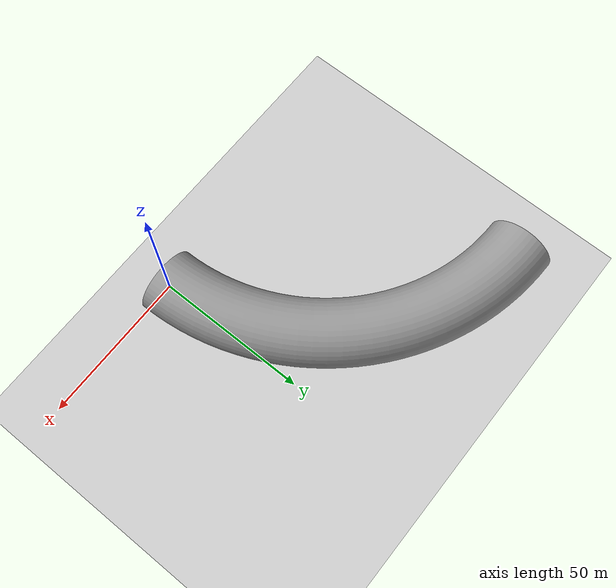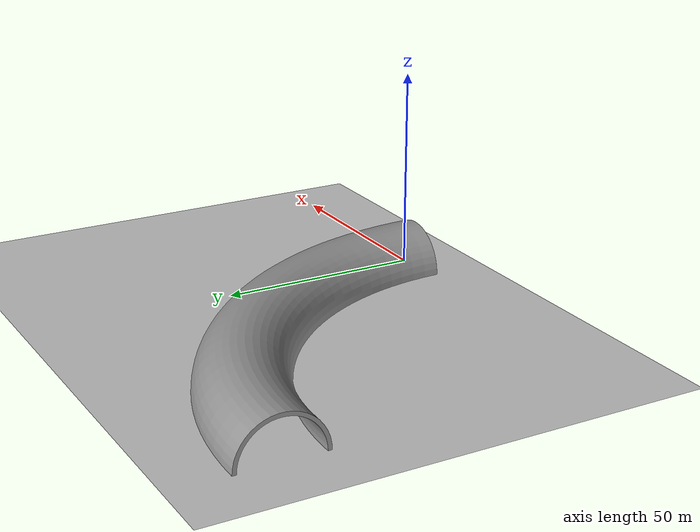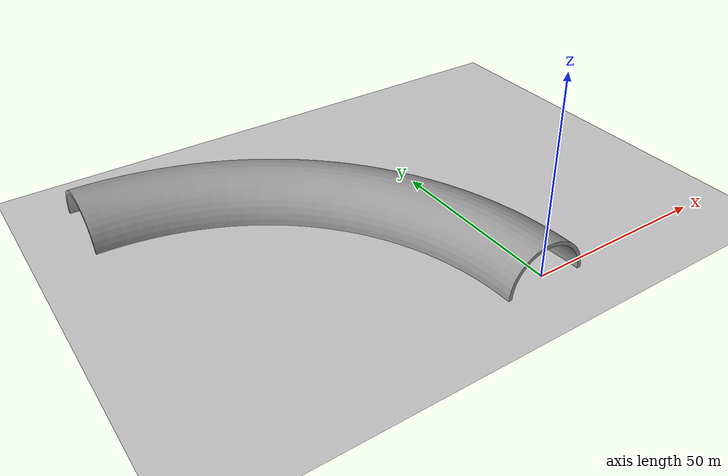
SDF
<sdf version="1.6">
 <world name="default">
  <light name="sun" type="directional">
   <pose>0 0 10 0 -0 0</pose>
   <diffuse>0.8 0.8 0.8 1</diffuse>
   <specular>0.2 0.2 0.2 1</specular>
   <attenuation>
    <range>1000</range>
    <constant>0.9</constant>
    <linear>0.01</linear>
    <quadratic>0.001</quadratic>
   </attenuation>
   <direction>-0.5 0.1 -0.9</direction>
  </light>
  <model name="ground_plane">
   <static>1</static>
   <link name="link">
    <collision name="collision">
     <geometry><plane><normal>0 0 1</normal><size>100 100</size></plane></geometry>
     <surface><friction><ode><mu>100</mu><mu2>50</mu2></ode></friction></surface>
    </collision>
    <visual name="visual">
     <cast_shadows>0</cast_shadows>
     <geometry><plane><normal>0 0 1</normal><size>100 100</size></plane></geometry>
     <material>
      <script><uri>file://media/materials/scripts/gazebo.material</uri><name>Gazebo/Grey</name></script>
     </material>
    </visual>
   </link>
  </model>
  <gravity>0 0 -9.8</gravity>
  <magnetic_field>6e-06 2.3e-05 -4.2e-05</magnetic_field>
  <atmosphere type="adiabatic"/>
  <physics name="default_physics" default="0" type="ode">
   <max_step_size>0.001</max_step_size>
   <real_time_factor>1</real_time_factor>
   <real_time_update_rate>1000</real_time_update_rate>
  </physics>
  <scene><ambient>0.4 0.4 0.4 1</ambient><background>0.7 0.7 0.7 1</background><shadows>1</shadows></scene>
  <audio><device>default</device></audio>
  <spherical_coordinates>
   <surface_model>EARTH_WGS84</surface_model>
   <latitude_deg>0</latitude_deg>
   <longitude_deg>0</longitude_deg>
   <elevation>0</elevation>
   <heading_deg>0</heading_deg>
  </spherical_coordinates>
  <model name="tilt_tunnel_0">
   <static>1</static>
   <link name="link_0">
    <inertial>
     <mass>1</mass>
     <inertia>
      <ixx>0.166667</ixx>
      <ixy>0</ixy>
      <ixz>0</ixz>
      <iyy>0.166667</iyy>
      <iyz>0</iyz>
      <izz>0.166667</izz>
     </inertia>
    </inertial>
    <pose>0 0 -0 1.5708 -0 3.1415</pose>
    <gravity>0</gravity>
    <visual name="visual">
     <geometry>
      <mesh>
       <uri>/home/thy/catkin_ws/src/my_turtlebot_launch/urdf/mesh/tilt_tunnel.stl</uri>
       <scale>1 1 1</scale>
      </mesh>
     </geometry>
     <material>
      <lighting>1</lighting>
      <script><uri>file://media/materials/scripts/gazebo.material</uri><name>Gazebo/Grey</name></script>
      <shader type="vertex"><normal_map>__default__</normal_map></shader>
      <ambient>0.3 0.3 0.3 1</ambient>
      <diffuse>0.7 0.7 0.7 1</diffuse>
      <specular>0.01 0.01 0.01 1</specular>
      <emissive>0 0 0 1</emissive>
     </material>
    </visual>
    <collision name="collision">
     <geometry>
      <mesh>
       <uri>/home/thy/catkin_ws/src/my_turtlebot_launch/urdf/mesh/tilt_tunnel.stl</uri>
       <scale>1 1 1</scale>
      </mesh>
     </geometry>
     <surface>
      <friction>
       <ode><mu>1</mu><mu2>1</mu2><fdir1>0 0 0</fdir1><slip1>0</slip1><slip2>0</slip2></ode>
       <torsional>
        <coefficient>1</coefficient>
        <patch_radius>0</patch_radius>
        <surface_radius>0</surface_radius>
        <use_patch_radius>1</use_patch_radius>
        <ode><slip>0</slip></ode>
       </torsional>
      </friction>
      <bounce><restitution_coefficient>0</restitution_coefficient><threshold>1e+06</threshold></bounce>
      <contact>
       <collide_without_contact>0</collide_without_contact>
       <collide_without_contact_bitmask>1</collide_without_contact_bitmask>
       <collide_bitmask>1</collide_bitmask>
       <ode>
        <soft_cfm>0</soft_cfm>
        <soft_erp>0.2</soft_erp>
        <kp>1e+13</kp>
        <kd>1</kd>
        <max_vel>0.01</max_vel>
        <min_depth>0</min_depth>
       </ode>
       <bullet>
        <split_impulse>1</split_impulse>
        <split_impulse_penetration_threshold>-0.01</split_impulse_penetration_threshold>
        <soft_cfm>0</soft_cfm>
        <soft_erp>0.2</soft_erp>
        <kp>1e+13</kp>
        <kd>1</kd>
       </bullet>
      </contact>
     </surface>
    </collision>
   </link>
   <static>0</static>
   <pose>10 -3 -0.8 0 -0 0</pose>
  </model>
  <light name="user_point_light_0" type="point">
   <pose>-30.9718 69.366 1 0 -0 0</pose>
   <diffuse>0.5 0.5 0.5 1</diffuse>
   <specular>0.1 0.1 0.1 1</specular>
   <attenuation>
    <range>20</range>
    <constant>0.5</constant>
    <linear>0.01</linear>
    <quadratic>0.001</quadratic>
   </attenuation>
   <cast_shadows>0</cast_shadows>
   <direction>0 0 -1</direction>
  </light>
  <light name="user_point_light_1" type="point">
   <pose>-15.578 52.5402 1 0 -0 0</pose>
   <diffuse>0.5 0.5 0.5 1</diffuse>
   <specular>0.1 0.1 0.1 1</specular>
   <attenuation>
    <range>20</range>
    <constant>0.5</constant>
    <linear>0.01</linear>
    <quadratic>0.001</quadratic>
   </attenuation>
   <cast_shadows>0</cast_shadows>
   <direction>0 0 -1</direction>
  </light>
  <light name="user_point_light_2" type="point">
   <pose>-53.4642 71.1568 1 0 -0 0</pose>
   <diffuse>0.5 0.5 0.5 1</diffuse>
   <specular>0.1 0.1 0.1 1</specular>
   <attenuation>
    <range>20</range>
    <constant>0.5</constant>
    <linear>0.01</linear>
    <quadratic>0.001</quadratic>
   </attenuation>
   <cast_shadows>0</cast_shadows>
   <direction>0 0 -1</direction>
  </light>
 </world>
</sdf>
